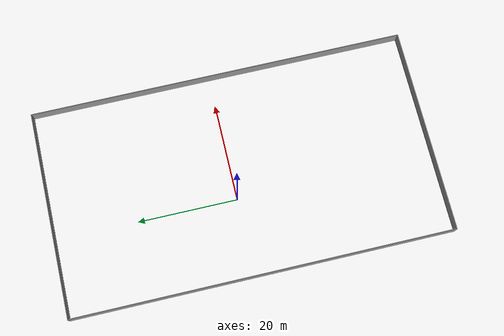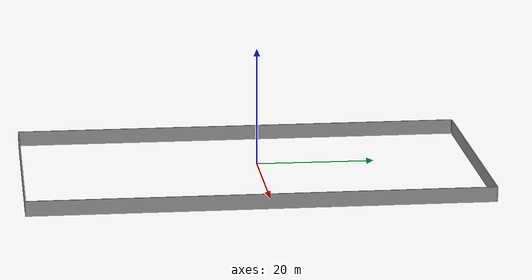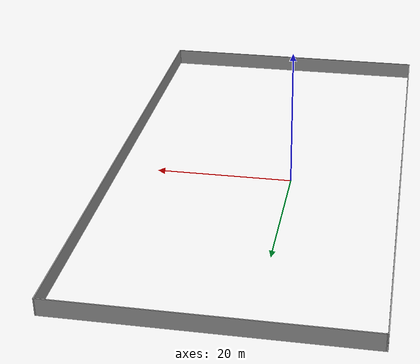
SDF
<?xml version='1.0'?>
<sdf version='1.6'>
  <model name='market_walls'>
    <pose frame=''>4.9979 -1.73245 0 0 -0 0</pose>
    <link name='Wall_0'>
      <collision name='Wall_0_Collision'>
        <geometry>
          <box>
            <size>76.25 0.15 2.5</size>
          </box>
        </geometry>
        <pose frame=''>0 0 1.25 0 -0 0</pose>
      </collision>
      <visual name='Wall_0_Visual'>
        <pose frame=''>0 0 1.25 0 -0 0</pose>
        <geometry>
          <box>
            <size>76.25 0.15 2.5</size>
          </box>
        </geometry>
        <material>
          <script>
            <uri>file://media/materials/scripts/gazebo.material</uri>
            <name>Gazebo/Grey</name>
          </script>
          <ambient>1 1 1 1</ambient>
        </material>
        <meta>
          <layer>0</layer>
        </meta>
      </visual>
      <pose frame=''>-20.8 -2e-06 0 0 0 -1.5708</pose>
    </link>
    <link name='Wall_1'>
      <collision name='Wall_1_Collision'>
        <geometry>
          <box>
            <size>41.75 0.15 2.5</size>
          </box>
        </geometry>
        <pose frame=''>0 0 1.25 0 -0 0</pose>
      </collision>
      <visual name='Wall_1_Visual'>
        <pose frame=''>0 0 1.25 0 -0 0</pose>
        <geometry>
          <box>
            <size>41.75 0.15 2.5</size>
          </box>
        </geometry>
        <material>
          <script>
            <uri>file://media/materials/scripts/gazebo.material</uri>
            <name>Gazebo/Grey</name>
          </script>
          <ambient>1 1 1 1</ambient>
        </material>
        <meta>
          <layer>0</layer>
        </meta>
      </visual>
      <pose frame=''>0 -38.05 0 0 -0 0</pose>
    </link>
    <link name='Wall_2'>
      <collision name='Wall_2_Collision'>
        <geometry>
          <box>
            <size>76.25 0.15 2.5</size>
          </box>
        </geometry>
        <pose frame=''>0 0 1.25 0 -0 0</pose>
      </collision>
      <visual name='Wall_2_Visual'>
        <pose frame=''>0 0 1.25 0 -0 0</pose>
        <geometry>
          <box>
            <size>76.25 0.15 2.5</size>
          </box>
        </geometry>
        <material>
          <script>
            <uri>file://media/materials/scripts/gazebo.material</uri>
            <name>Gazebo/Grey</name>
          </script>
          <ambient>1 1 1 1</ambient>
        </material>
        <meta>
          <layer>0</layer>
        </meta>
      </visual>
      <pose frame=''>20.8 -2e-06 0 0 -0 1.5708</pose>
    </link>
    <link name='Wall_3'>
      <collision name='Wall_3_Collision'>
        <geometry>
          <box>
            <size>41.5 0.15 2.5</size>
          </box>
        </geometry>
        <pose frame=''>0 0 1.25 0 -0 0</pose>
      </collision>
      <visual name='Wall_3_Visual'>
        <pose frame=''>0 0 1.25 0 -0 0</pose>
        <geometry>
          <box>
            <size>41.5 0.15 2.5</size>
          </box>
        </geometry>
        <material>
          <script>
            <uri>file://media/materials/scripts/gazebo.material</uri>
            <name>Gazebo/Grey</name>
          </script>
          <ambient>1 1 1 1</ambient>
        </material>
        <meta>
          <layer>0</layer>
        </meta>
      </visual>
      <pose frame=''>0.125 38.05 0 0 -0 3.14159</pose>
    </link>
    <link name='Wall_5'>
      <collision name='Wall_5_Collision'>
        <geometry>
          <box>
            <size>0.4 0.15 2.5</size>
          </box>
        </geometry>
        <pose frame=''>0 0 1.25 0 -0 0</pose>
      </collision>
      <visual name='Wall_5_Visual'>
        <pose frame=''>0 0 1.25 0 -0 0</pose>
        <geometry>
          <box>
            <size>0.4 0.15 2.5</size>
          </box>
        </geometry>
        <material>
          <script>
            <uri>file://media/materials/scripts/gazebo.material</uri>
            <name>Gazebo/Grey</name>
          </script>
          <ambient>1 1 1 1</ambient>
        </material>
        <meta>
          <layer>0</layer>
        </meta>
      </visual>
      <pose frame=''>-20.675 38.05 0 0 0 -3.14159</pose>
    </link>
    <static>1</static>
  </model>
</sdf>
